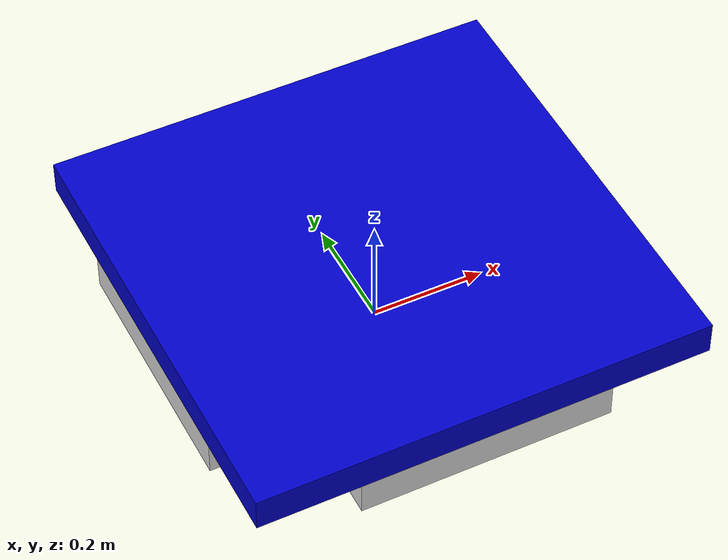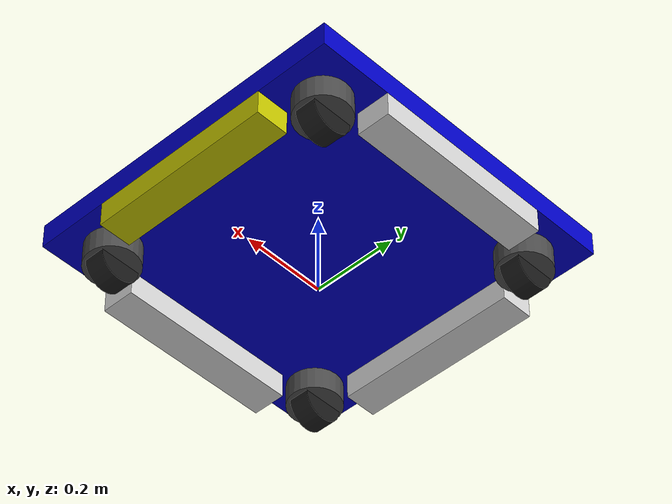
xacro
<?xml version="1.0"?>
<robot name="swervebot" xmlns:xacro="http://www.ros.org/wiki/xacro">

    <!-- Master xacro file -->

    <xacro:include filename="inertial_macros.xacro"/>
    <xacro:include filename="materials.xacro"/>
    <xacro:include filename="swervebot_car.xacro"/>
    <xacro:include filename="gz_ros2_control.xacro"/>

</robot>

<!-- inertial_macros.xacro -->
<robot xmlns:xacro="http://www.ros.org/wiki/xacro">

    <xacro:macro name="inertial_box" params="mass x y z *origin">
      <inertial>
        <xacro:insert_block name="origin"/>
        <mass value="${mass}" />
        <inertia ixx="${(1/12) * mass * (y*y+z*z)}" ixy="0.0" ixz="0.0"
                iyy="${(1/12) * mass * (x*x+z*z)}" iyz="0.0"
                izz="${(1/12) * mass * (x*x+y*y)}" />
      </inertial>
    </xacro:macro>

    <xacro:macro name="inertial_cylinder" params="mass length radius *origin">
        <inertial>
            <xacro:insert_block name="origin"/>
            <mass value="${mass}" />
            <inertia ixx="${(1/12) * mass * (3*radius*radius + length*length)}" ixy="0.0" ixz="0.0"
                    iyy="${(1/12) * mass * (3*radius*radius + length*length)}" iyz="0.0"
                    izz="${(1/2) * mass * (radius*radius)}" />
        </inertial>
    </xacro:macro>

    <xacro:macro name="inertial_cylinder" params="mass length radius *origin">
        <inertial>
            <xacro:insert_block name="origin"/>
            <mass value="${mass}" />
            <inertia ixx="${(1/12) * mass * (3*radius*radius + length*length)}" ixy="0.0" ixz="0.0"
                    iyy="${(1/12) * mass * (3*radius*radius + length*length)}" iyz="0.0"
                    izz="${(1/2) * mass * (radius*radius)}" />
        </inertial>
    </xacro:macro>

</robot>

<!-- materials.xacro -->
<robot xmlns:xacro="http://www.ros.org/wiki/xacro">

    <material name="silver">
      <color rgba="0.86 0.86 0.86 1"/>
    </material>

    <material name="black">
        <color rgba="0.1 0.1 0.1 1.0"/>
    </material>

    <material name="blue">
        <color rgba="0.0 0.0 0.8 1.0"/>
    </material>

    <material name="green">
        <color rgba="0.4 0.9 0.4 1.0"/>
    </material>

    <material name="gray">
        <color rgba="0.7 0.7 0.7 1.0"/>
    </material>

    <material name="darkgray">
        <color rgba="0.3 0.3 0.3 1.0"/>
    </material>

    <material name="red">
        <color rgba="0.8 0.0 0.0 1.0"/>
    </material>

    <material name="white">
        <color rgba="1.0 1.0 1.0 1.0"/>
    </material>

    <material name="yellow">
        <color rgba="0.8 0.8 0.0 1.0"/>
    </material>

</robot>

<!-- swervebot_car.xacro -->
<robot xmlns:xacro="http://www.ros.org/wiki/xacro">

    <!-- BASE LINK/FRAME -->

    <xacro:property name="frame_width" value="0.8"/>
    <xacro:property name="frame_length" value="0.8"/>
    <xacro:property name="frame_depth" value="0.06"/>
    <xacro:property name="set_wheel_radius" value="0.05"/>

    <link name="base_footprint_link"/>

    <link name="base_link">
        <visual>
            <geometry>
                <box size="${frame_length} ${frame_width} ${frame_depth}"/>
            </geometry>
            <material name="blue"/>
        </visual>

        <collision>
            <geometry>
                <box size="${frame_length} ${frame_width} ${frame_depth}"/>
            </geometry>
        </collision>

        <xacro:inertial_box mass="1.5" x="${frame_length}" y="${frame_width}" z="${frame_depth}">
            <origin/>
        </xacro:inertial_box>
    </link>

    <!-- WARNING: This joint is not accurately positioned at the wheel contact to the ground -->

    <joint name="base_footprint_joint" type="fixed">
        <parent link="base_footprint_link"/>
        <child link="base_link"/>
        <origin xyz="0 0 ${frame_depth * 1.5 + set_wheel_radius}"/>
    </joint>

    <!-- BUMPER LINKS -->

    <xacro:property name="bumper_thick_x" value="${frame_length / 10}"/>
    <xacro:property name="bumper_length_x" value="${frame_width / 1.8}"/>
    <xacro:property name="bumper_thick_y" value="${frame_length / 1.8}"/>
    <xacro:property name="bumper_length_y" value="${frame_width / 10}"/>
    <xacro:property name="bumper_mass" value="0.5"/>

    <link name="bumper_front_link">
        <visual>
            <geometry>
                <box size="${bumper_thick_x} ${bumper_length_x} ${frame_depth}"/>
            </geometry>
            <material name="yellow"/>
        </visual>

        <collision>
            <geometry>
                <box size="${bumper_thick_x} ${bumper_length_x} ${frame_depth}"/>
            </geometry>
        </collision>

        <xacro:inertial_box mass="${bumper_mass}" x="${bumper_thick_x}" y="${bumper_length_x}" z="${frame_depth}">
            <origin/>
        </xacro:inertial_box>
    </link>

    <link name="bumper_left_link">
        <visual>
            <geometry>
                <box size="${bumper_thick_y} ${bumper_length_y} ${frame_depth}"/>
            </geometry>
            <material name="silver"/>
        </visual>

        <collision>
            <geometry>
                <box size="${bumper_thick_y} ${bumper_length_y} ${frame_depth}"/>
            </geometry>
        </collision>

        <xacro:inertial_box mass="${bumper_mass}" x="${bumper_thick_y}" y="${bumper_length_y}" z="${frame_depth}">
            <origin/>
        </xacro:inertial_box>
    </link>

    <link name="bumper_right_link">
        <visual>
            <geometry>
                <box size="${bumper_thick_y} ${bumper_length_y} ${frame_depth}"/>
            </geometry>
            <material name="silver"/>
        </visual>

        <collision>
            <geometry>
                <box size="${bumper_thick_y} ${bumper_length_y} ${frame_depth}"/>
            </geometry>
        </collision>

        <xacro:inertial_box mass="${bumper_mass}" x="${bumper_thick_y}" y="${bumper_length_y}" z="${frame_depth}">
            <origin/>
        </xacro:inertial_box>
    </link>

    <link name="bumper_rear_link">
        <visual>
            <geometry>
                <box size="${bumper_thick_x} ${bumper_length_x} ${frame_depth}"/>
            </geometry>
            <material name="silver"/>
        </visual>

        <collision>
            <geometry>
                <box size="${bumper_thick_x} ${bumper_length_x} ${frame_depth}"/>
            </geometry>
        </collision>

        <xacro:inertial_box mass="${bumper_mass}" x="${bumper_thick_x}" y="${bumper_length_x}" z="${frame_depth}">
            <origin/>
        </xacro:inertial_box>
    </link>

    <!-- GENERATE SWERVE WHEEL LINKS AND JOINTS -->

    <xacro:include filename="swervebot_wheel.xacro"/>

    <xacro:swerve_wheel name="front_left" radius="${set_wheel_radius}" rotater_material="darkgray" spinner_material="black"/>
    <xacro:swerve_wheel name="front_right" radius="${set_wheel_radius}" rotater_material="darkgray" spinner_material="black"/>
    <xacro:swerve_wheel name="rear_left" radius="${set_wheel_radius}" rotater_material="darkgray" spinner_material="black"/>
    <xacro:swerve_wheel name="rear_right" radius="${set_wheel_radius}" rotater_material="darkgray" spinner_material="black"/>

    <!-- JOINTS -->

    <joint name="front_left_wheel_joint" type="continuous">
        <origin xyz="${frame_length * 0.45 - set_wheel_radius * 1.25} ${frame_width * 0.45 - set_wheel_radius * 1.25} ${-0.55 * set_wheel_radius - frame_depth / 2}"
                rpy="0 0 ${pi}"
        />
        <parent link="base_link"/>
        <child link="front_left_rotater_link"/>
        <axis xyz="0 0 1"/>
    </joint>

    <joint name="front_right_wheel_joint" type="continuous">
        <origin xyz="${frame_length * 0.45 - set_wheel_radius * 1.25} -${frame_width * 0.45 - set_wheel_radius * 1.25} ${-0.55 * set_wheel_radius - frame_depth / 2}"
                rpy="0 0 ${pi}"
        />
        <parent link="base_link"/>
        <child link="front_right_rotater_link"/>
        <axis xyz="0 0 1"/>
    </joint>

    <joint name="rear_left_wheel_joint" type="continuous">
        <origin xyz="-${frame_length * 0.45 - set_wheel_radius * 1.25} -${frame_width * 0.45 - set_wheel_radius * 1.25} ${-0.55 * set_wheel_radius - frame_depth / 2}"
                rpy="0 0 ${pi}"
        />
        <parent link="base_link"/>
        <child link="rear_left_rotater_link"/>
        <axis xyz="0 0 1"/>
    </joint>

    <joint name="rear_right_wheel_joint" type="continuous">
        <origin xyz="-${frame_length * 0.45 - set_wheel_radius * 1.25} ${frame_width * 0.45 - set_wheel_radius * 1.25} ${-0.55 * set_wheel_radius - frame_depth / 2}"
                rpy="0 0 ${pi}"
        />
        <parent link="base_link"/>
        <child link="rear_right_rotater_link"/>
        <axis xyz="0 0 1"/>
    </joint>

    <joint name="bumper_front_joint" type="fixed">
        <origin xyz="${frame_length / 2 - bumper_thick_x / 2} 0 -${frame_depth}"/>
        <parent link="base_link"/>
        <child link="bumper_front_link"/>
    </joint>

    <joint name="bumper_left_joint" type="fixed">
        <origin xyz="0 ${frame_width / 2 - bumper_length_y / 2} -${frame_depth}"/>
        <parent link="base_link"/>
        <child link="bumper_left_link"/>
    </joint>

    <joint name="bumper_right_joint" type="fixed">
        <origin xyz="0 -${frame_width / 2 - bumper_length_y / 2} -${frame_depth}"/>
        <parent link="base_link"/>
        <child link="bumper_right_link"/>
    </joint>

    <joint name="bumper_rear_joint" type="fixed">
        <origin xyz="-${frame_length / 2 - bumper_thick_x / 2} 0 -${frame_depth}"/>
        <parent link="base_link"/>
        <child link="bumper_rear_link"/>
    </joint>

</robot>

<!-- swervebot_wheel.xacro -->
<robot xmlns:xacro="http://www.ros.org/wiki/xacro">

    <!--
        This macro generate two links representing the wheel and differential drive
        gear mechanism and make a joint out of them.
     -->

    <xacro:macro name="swerve_wheel" params="name radius rotater_material spinner_material">

        <xacro:property name="wheel_radius" value="${radius}"/>

        <link name="${name}_rotater_link">
            <visual>
                <geometry>
                    <cylinder radius="${wheel_radius * 1.25}" length="${wheel_radius * 1.1}"/>
                </geometry>
                <material name="${rotater_material}"/>
            </visual>

            <collision>
                <geometry>
                    <cylinder radius="${wheel_radius * 1.25}" length="${wheel_radius * 1.1}"/>
                </geometry>
            </collision>

            <xacro:inertial_cylinder mass="${wheel_radius * 3}" length="${wheel_radius * 1.1}" radius="${wheel_radius * 1.25}">
                <origin/>
            </xacro:inertial_cylinder>
        </link>

        <link name="${name}_spinner_link">
            <visual>
                <geometry>
                    <cylinder radius="${wheel_radius * 1}" length="${wheel_radius * 1}"/>
                </geometry>
                <material name="${spinner_material}"/>
            </visual>

            <collision>
                <geometry>
                    <cylinder radius="${wheel_radius * 1}" length="${wheel_radius * 1}"/>
                </geometry>
            </collision>

            <xacro:inertial_cylinder mass="${wheel_radius * 5}" length="${wheel_radius * 1}" radius="${wheel_radius * 1}">
                <origin/>
            </xacro:inertial_cylinder>
        </link>

        <joint name="${name}_swerve_joint" type="continuous">
            <origin xyz="0 0 ${wheel_radius * -0.55}" rpy="${pi/2} 0 0"/>
            <parent link="${name}_rotater_link"/>
            <child link="${name}_spinner_link"/>
            <axis xyz="0 0 1"/>
        </joint>

    </xacro:macro>

</robot>
